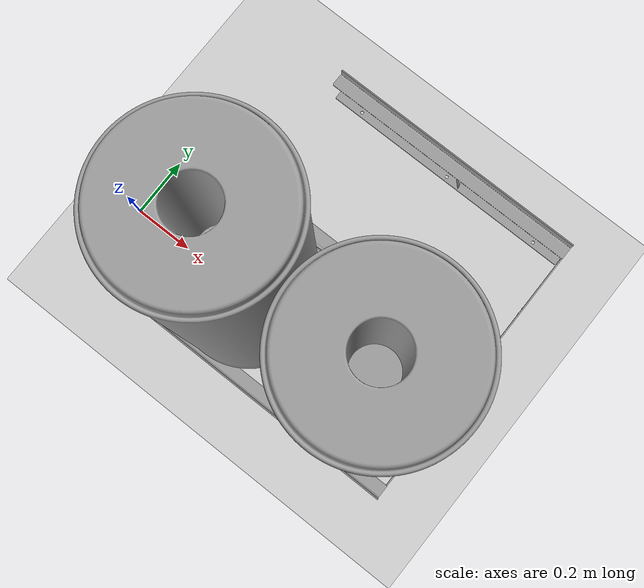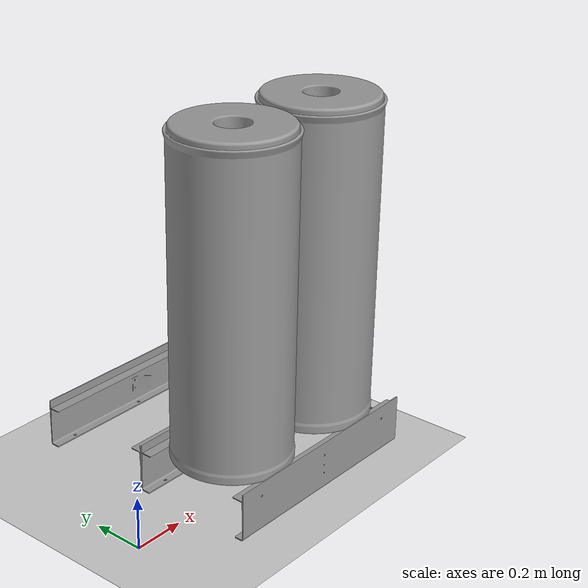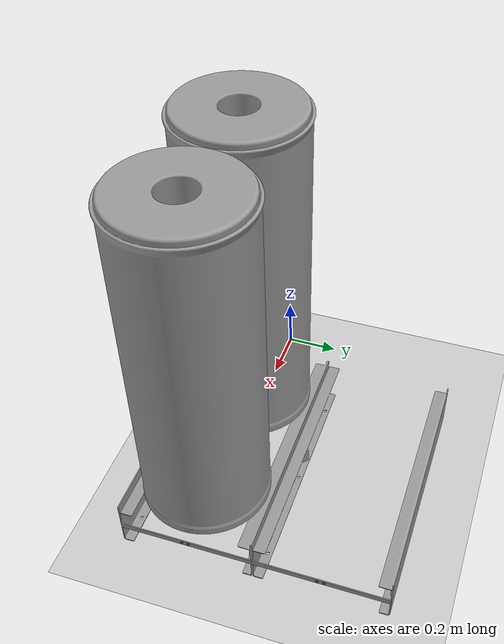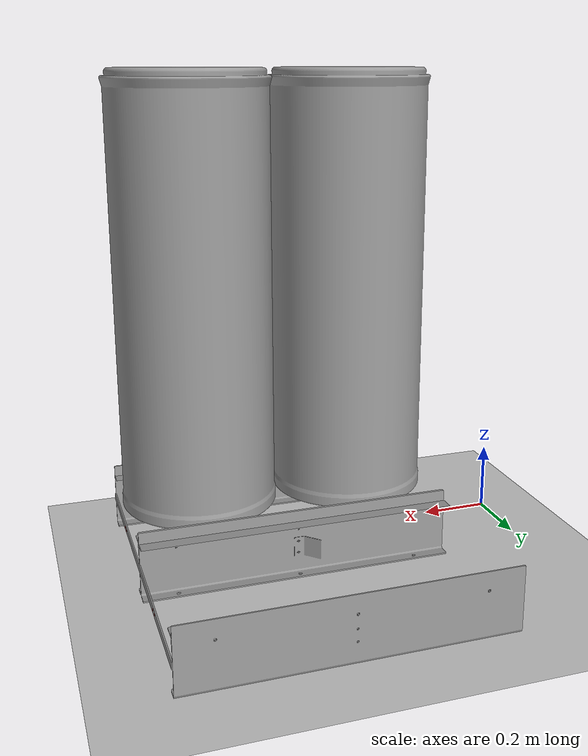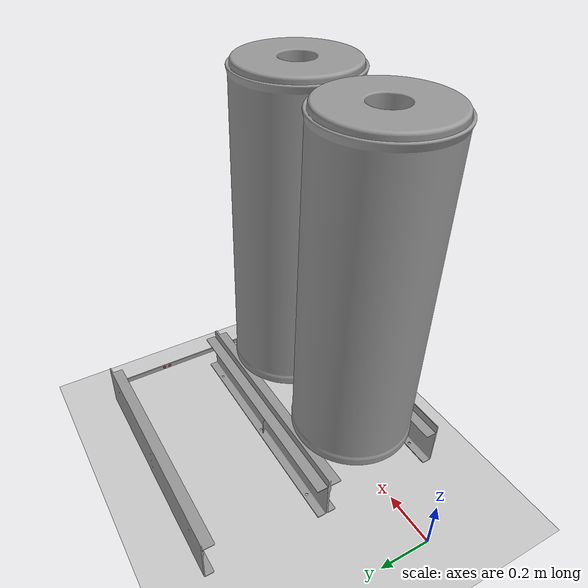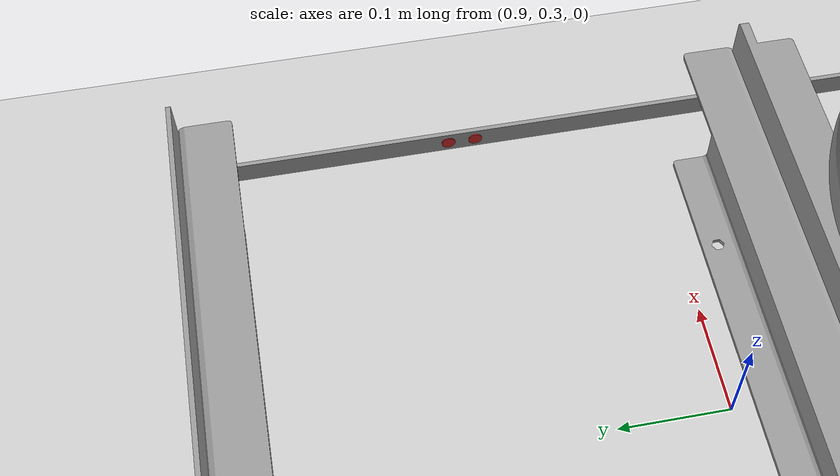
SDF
<sdf version="1.4">
  <world name="default">

    <scene>
      <ambient>0.4 0.4 0.4 1</ambient>
      <background>0.7 0.7 0.7 1</background>
      <shadows>true</shadows>
    </scene>

    <!-- A global light source -->
    <include>
      <uri>model://sun</uri>
    </include>

    <!-- A ground plane -->
    <include>
      <uri>model://ground_plane</uri>
    </include>

    <!-- Load OpenEnd 900mm Closed-->
    <include>
      <uri>model://cannyone_simulation/models/openend_900mm_closed</uri>
      <pose>0.71 0.2425 0 0 -0 0</pose>
    </include>

    <!-- Load Cann 1 -->
    <include>
      <uri>model://cannyone_simulation/models/Cann</uri>
      <name>Cann_1</name>
      <pose>0.940 0.0 0.162 0 -0 0</pose>
    </include>

    <!-- Load Cann 2 -->
    <include>
      <uri>model://cannyone_simulation/models/Cann</uri>
      <name>Cann_2</name>
      <pose>0.480 0.0 0.162 0 -0 0</pose>
    </include>

    <physics type="ode">
      <real_time_update_rate>1000.0</real_time_update_rate>
      <max_step_size>0.001</max_step_size>
      <real_time_factor>1</real_time_factor>
      <ode>
        <solver>
          <type>quick</type>
          <iters>150</iters>
          <precon_iters>0</precon_iters>
          <sor>1.400000</sor>
          <use_dynamic_moi_rescaling>1</use_dynamic_moi_rescaling>
        </solver>
        <constraints>
          <cfm>0.00001</cfm>
          <erp>0.2</erp>
          <contact_max_correcting_vel>2000.000000</contact_max_correcting_vel>
          <contact_surface_layer>0.01000</contact_surface_layer>
        </constraints>
      </ode>
    </physics>
  </world>

</sdf>

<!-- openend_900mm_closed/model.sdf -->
<sdf version='1.7'>
  <model name='OpenEnd_900mm_closed'>
    <link name='link'>
      <inertial>
        <mass>0</mass>
        <inertia>
          <ixx>0</ixx>
          <ixy>0</ixy>
          <ixz>0</ixz>
          <iyy>0</iyy>
          <iyz>0</iyz>
          <izz>0</izz>
        </inertia>
        <pose>0 0 0 0 -0 0</pose>
      </inertial>
      <pose>0 0 0.002 0 -0 0</pose>
      <gravity>1</gravity>
      <self_collide>0</self_collide>
      <kinematic>0</kinematic>
      <enable_wind>0</enable_wind>
      <visual name='visual'>
        <pose>0 0 0 0 -0 0</pose>
        <geometry>
          <mesh>
            <uri>model://cannyone_simulation/models/openend_900mm_closed/meshes/openend_900mm.stl</uri>
            <scale>1 1 1</scale>
          </mesh>
        </geometry>
        <material>
          <lighting>1</lighting>
          <script>
            <uri>file://media/materials/scripts/gazebo.material</uri>
            <name>Gazebo/Grey</name>
          </script>
          <shader type='pixel'>
            <normal_map>__default__</normal_map>
          </shader>
          <ambient>0.3 0.3 0.3 1</ambient>
          <diffuse>0.7 0.7 0.7 1</diffuse>
          <specular>0.01 0.01 0.01 1</specular>
          <emissive>0 0 0 1</emissive>
        </material>
        <transparency>0</transparency>
        <cast_shadows>1</cast_shadows>
      </visual>
      <collision name='collision'>
        <laser_retro>0</laser_retro>
        <max_contacts>10</max_contacts>
        <pose>0 0 0 0 -0 0</pose>
        <geometry>
          <mesh>
            <uri>model://cannyone_simulation/models/openend_900mm_closed/meshes/openend_900mm.stl</uri>
            <scale>1 1 1</scale>
          </mesh>
        </geometry>
        <surface>
          <friction>
            <ode>
              <mu>1</mu>
              <mu2>1</mu2>
              <fdir1>0 0 0</fdir1>
              <slip1>0</slip1>
              <slip2>0</slip2>
            </ode>
            <torsional>
              <coefficient>1</coefficient>
              <patch_radius>0</patch_radius>
              <surface_radius>0</surface_radius>
              <use_patch_radius>1</use_patch_radius>
              <ode>
                <slip>0</slip>
              </ode>
            </torsional>
          </friction>
          <bounce>
            <restitution_coefficient>0</restitution_coefficient>
            <threshold>1e+06</threshold>
          </bounce>
          <contact>
            <collide_without_contact>0</collide_without_contact>
            <collide_without_contact_bitmask>1</collide_without_contact_bitmask>
            <collide_bitmask>1</collide_bitmask>
            <ode>
              <soft_cfm>0</soft_cfm>
              <soft_erp>0.2</soft_erp>
              <kp>1e+13</kp>
              <kd>1</kd>
              <max_vel>0.01</max_vel>
              <min_depth>0</min_depth>
            </ode>
            <bullet>
              <split_impulse>1</split_impulse>
              <split_impulse_penetration_threshold>-0.01</split_impulse_penetration_threshold>
              <soft_cfm>0</soft_cfm>
              <soft_erp>0.2</soft_erp>
              <kp>1e+13</kp>
              <kd>1</kd>
            </bullet>
          </contact>
        </surface>
      </collision>
    </link>

    <link name='end_bar'>
      <pose>0.4504 0.0 0.09 0 -0 0</pose>
      <collision name='collision'>
        <geometry>
          <box>
            <size>0.004 0.965 0.02</size>
          </box>
        </geometry>
      </collision>
      <visual name='visual'>
        <geometry>
          <box>
            <size>0.004 0.965 0.02</size>
          </box>
        </geometry>
        <material>
          <script>
            <name>Gazebo/Grey</name>
            <uri>file://media/materials/scripts/gazebo.material</uri>
          </script>
        </material>
      </visual>
      <self_collide>0</self_collide>
    </link>

    <link name='red_dot_1'>
    <pose>0.45 -0.2545 0.09 0 1.5708 0</pose>
      <visual name='visual'>
        <geometry>
          <cylinder>
            <radius>0.006</radius>
            <length>0.005</length>
          </cylinder>
        </geometry>
        <material>
          <script>
            <name>Gazebo/Red</name>
            <uri>file://media/materials/scripts/gazebo.material</uri>
          </script>
        </material>
      </visual>
      <self_collide>0</self_collide>
    </link>

    <link name='red_dot_2'>
    <pose>0.45 -0.2305 0.09 0 1.5708 0</pose>
      <visual name='visual'>
        <geometry>
          <cylinder>
            <radius>0.006</radius>
            <length>0.005</length>
          </cylinder>
        </geometry>
        <material>
          <script>
            <name>Gazebo/Red</name>
            <uri>file://media/materials/scripts/gazebo.material</uri>
          </script>
        </material>
      </visual>
      <self_collide>0</self_collide>
    </link>

    <link name='red_dot_3'>
    <pose>0.45 0.2305 0.09 0 1.5708 0</pose>
      <visual name='visual'>
        <geometry>
          <cylinder>
            <radius>0.006</radius>
            <length>0.005</length>
          </cylinder>
        </geometry>
        <material>
          <script>
            <name>Gazebo/Red</name>
            <uri>file://media/materials/scripts/gazebo.material</uri>
          </script>
        </material>
      </visual>
      <self_collide>0</self_collide>
    </link>

    <link name='red_dot_4'>
    <pose>0.45 0.2545 0.09 0 1.5708 0</pose>
      <visual name='visual'>
        <geometry>
          <cylinder>
            <radius>0.006</radius>
            <length>0.005</length>
          </cylinder>
        </geometry>
        <material>
          <script>
            <name>Gazebo/Red</name>
            <uri>file://media/materials/scripts/gazebo.material</uri>
          </script>
        </material>
      </visual>
      <self_collide>0</self_collide>
    </link>

    <static>1</static>
    <allow_auto_disable>1</allow_auto_disable>
  </model>
</sdf>

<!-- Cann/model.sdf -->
<sdf version='1.7'>
  <model name='Cann'>
    <link name='link'>
      <inertial>
        <mass>5</mass>
        <inertia>
          <ixx>0.477167</ixx>
          <ixy>0</ixy>
          <ixz>0</ixz>
          <iyy>0.477167</iyy>
          <iyz>0</iyz>
          <izz>0.121</izz>
        </inertia>
        <pose>0 0 0 0 -0 0</pose>
      </inertial>
      <pose>0 0 0 0 -0 0</pose>
      <gravity>1</gravity>
      <self_collide>0</self_collide>
      <kinematic>0</kinematic>
      <enable_wind>0</enable_wind>
      <visual name='visual'>
        <geometry>
          <mesh>
            <uri>model://cannyone_simulation/models/Cann/meshes/Cann.stl</uri>
            <scale>1 1 1</scale>
          </mesh>
        </geometry>
        <material>
          <script>
            <name>Gazebo/Grey</name>
            <uri>file://media/materials/scripts/gazebo.material</uri>
          </script>
          <shader type='pixel'>
            <normal_map>__default__</normal_map>
          </shader>
          <ambient>1 1 1 1</ambient>
          <diffuse>1 1 1 1</diffuse>
          <specular>1 1 1 1</specular>
          <emissive>0 0 0 1</emissive>
        </material>
        <pose>0 0 0 0 -0 0</pose>
        <transparency>0</transparency>
        <cast_shadows>1</cast_shadows>
      </visual>
      <collision name='collision'>
        <laser_retro>0</laser_retro>
        <max_contacts>10</max_contacts>
        <pose>0 0 0 0 -0 0</pose>
        <geometry>
          <mesh>
            <uri>model://cannyone_simulation/models/Cann/meshes/Cann.stl</uri>
            <scale>1 1 1</scale>
          </mesh>
        </geometry>
        <surface>
          <friction>
            <ode>
              <mu>1</mu>
              <mu2>1</mu2>
              <fdir1>0 0 0</fdir1>
              <slip1>0</slip1>
              <slip2>0</slip2>
            </ode>
            <torsional>
              <coefficient>1</coefficient>
              <patch_radius>0</patch_radius>
              <surface_radius>0</surface_radius>
              <use_patch_radius>1</use_patch_radius>
              <ode>
                <slip>0</slip>
              </ode>
            </torsional>
          </friction>
          <bounce>
            <restitution_coefficient>0</restitution_coefficient>
            <threshold>1e+06</threshold>
          </bounce>
          <contact>
            <collide_without_contact>0</collide_without_contact>
            <collide_without_contact_bitmask>1</collide_without_contact_bitmask>
            <collide_bitmask>1</collide_bitmask>
            <ode>
              <soft_cfm>0</soft_cfm>
              <soft_erp>0.2</soft_erp>
              <kp>1e+13</kp>
              <kd>1</kd>
              <max_vel>0.01</max_vel>
              <min_depth>0</min_depth>
            </ode>
            <bullet>
              <split_impulse>1</split_impulse>
              <split_impulse_penetration_threshold>-0.01</split_impulse_penetration_threshold>
              <soft_cfm>0</soft_cfm>
              <soft_erp>0.2</soft_erp>
              <kp>1e+13</kp>
              <kd>1</kd>
            </bullet>
          </contact>
        </surface>
      </collision>
    </link>
    <static>1</static>
    <allow_auto_disable>1</allow_auto_disable>
  </model>
</sdf>
